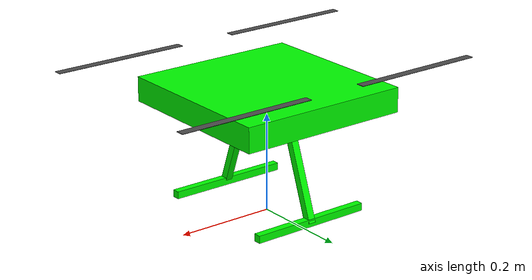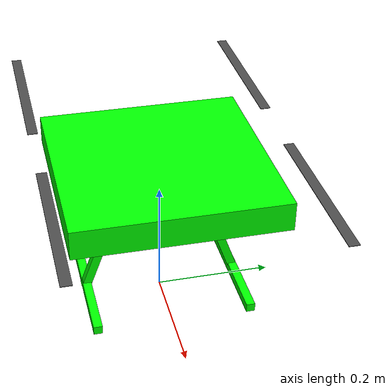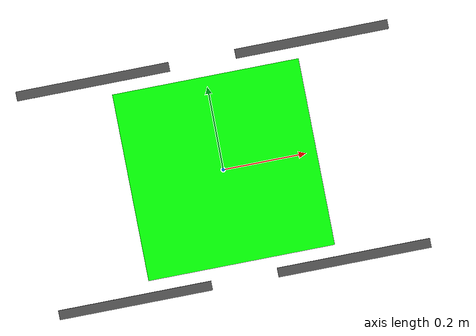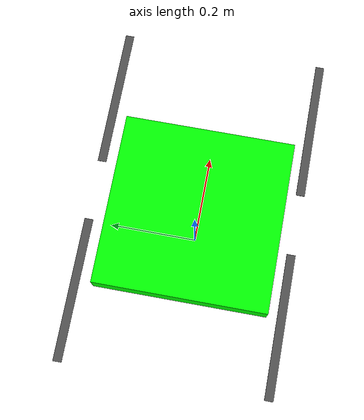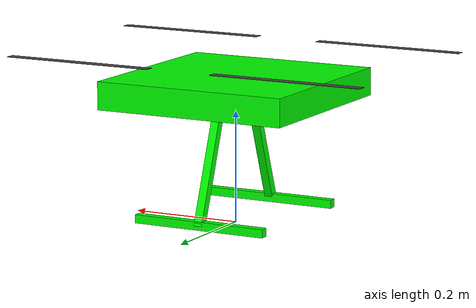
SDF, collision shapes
<?xml version="1.0" encoding="UTF-8"?>
<sdf version='1.9'>
  <model name='rl_frame'>
    <pose>0 0 .24 0 0 0</pose>
    <self_collide>false</self_collide>
    <static>false</static>
    <link name="base_link">
      <inertial>
        <mass>3.1</mass>
        <inertia>
          <ixx>0.039</ixx>
          <ixy>0</ixy>
          <ixz>0</ixz>
          <iyy>0.039</iyy>
          <iyz>0</iyz>
          <izz>0.061</izz>
        </inertia>
      </inertial>
      <gravity>true</gravity>
      <velocity_decay/>
      <visual name="base_link_visual">
        <pose>0 0 0 0 0 3.141592654</pose>
        <geometry>
        <sphere>
          <radius>0.08</radius>
        </sphere>
      </geometry>
      </visual>
      <visual name="base_link_arm_0">
        <pose>0.100 -0.100 0.0 -1.570796327 0 -2.356194490</pose>
        <geometry>
          <cylinder>
            <radius>0.02</radius>
            <length>0.2828</length>
          </cylinder>
        </geometry>
        <material>
          <diffuse>0 1 0 1</diffuse>
        </material>
      </visual>
      <visual name="base_link_arm_1">
        <pose>-0.100 0.100 0.0 1.570796327 0 -2.356194490</pose>
        <geometry>
          <cylinder>
            <radius>0.02</radius>
            <length>0.2828</length>
          </cylinder>
        </geometry>
        <material>
          <diffuse>1 0 0 1</diffuse>
        </material>
      </visual>
      <visual name="base_link_arm_2">
        <pose>0.100 0.100 0.0 1.570796327 0 -0.785398163</pose>
        <geometry>
          <cylinder>
            <radius>0.02</radius>
            <length>0.2828</length>
          </cylinder>
        </geometry>
        <material>
          <diffuse>0 1 0 1</diffuse>
        </material>
      </visual>
      <visual name="base_link_arm_3">
        <pose>-0.100 -0.100 0.0 -1.570796327 0 -0.785398163</pose>
        <geometry>
          <cylinder>
            <radius>0.02</radius>
            <length>0.2828</length>
          </cylinder>
        </geometry>
        <material>
          <diffuse>1 0 0 1</diffuse>
        </material>
      </visual>
      <collision name="base_link_collision_0">
        <pose>0 0 0 0 0 0</pose>
        <geometry>
          <box>
            <size>0.35355339059327373 0.35355339059327373 0.05</size>
          </box>
        </geometry>
        <surface>
          <contact>
            <ode>
              <min_depth>0.001</min_depth>
              <max_vel>0</max_vel>
            </ode>
          </contact>
          <friction>
            <ode/>
          </friction>
        </surface>
      </collision>
      <collision name="base_link_collision_1">
        <pose>0 -0.098 -.123 -0.35 0 0</pose>
        <geometry>
          <box>
            <size>0.015 0.015 0.21</size>
          </box>
        </geometry>
        <surface>
          <contact>
            <ode>
              <min_depth>0.001</min_depth>
              <max_vel>0</max_vel>
            </ode>
          </contact>
          <friction>
            <ode/>
          </friction>
        </surface>
      </collision>
      <collision name="base_link_collision_2">
        <pose>0 0.098 -.123 0.35 0 0</pose>
        <geometry>
          <box>
            <size>0.015 0.015 0.21</size>
          </box>
        </geometry>
        <surface>
          <contact>
            <ode>
              <min_depth>0.001</min_depth>
              <max_vel>0</max_vel>
            </ode>
          </contact>
          <friction>
            <ode/>
          </friction>
        </surface>
      </collision>
      <collision name="base_link_collision_3">
        <pose>0 -0.132 -.2195 0 0 0</pose>
        <geometry>
          <box>
            <size>0.25 0.015 0.015</size>
          </box>
        </geometry>
        <surface>
          <contact>
            <ode>
              <min_depth>0.001</min_depth>
              <max_vel>0</max_vel>
            </ode>
          </contact>
          <friction>
            <ode/>
          </friction>
        </surface>
      </collision>
      <collision name="base_link_collision_4">
        <pose>0 0.132 -.2195 0 0 0</pose>
        <geometry>
          <box>
            <size>0.25 0.015 0.015</size>
          </box>
        </geometry>
        <surface>
          <contact>
            <ode>
              <min_depth>0.001</min_depth>
              <max_vel>0</max_vel>
            </ode>
          </contact>
          <friction>
            <ode/>
          </friction>
        </surface>
      </collision>
      <sensor name="air_pressure_sensor" type="air_pressure">
        <always_on>1</always_on>
        <update_rate>50</update_rate>
        <air_pressure>
          <pressure>
            <noise type="gaussian">
              <mean>0</mean>
              <stddev>0.01</stddev>
            </noise>
          </pressure>
        </air_pressure>
      </sensor>
      <sensor name="imu_sensor" type="imu">
        <always_on>1</always_on>
        <update_rate>250</update_rate>
        <imu>
          <angular_velocity>
            <x>
              <noise type="gaussian">
                <mean>0</mean>
                <stddev>0.00018665</stddev>
                <dynamic_bias_stddev>3.8785e-05</dynamic_bias_stddev>
                <dynamic_bias_correlation_time>1000</dynamic_bias_correlation_time>
              </noise>
            </x>
            <y>
              <noise type="gaussian">
                <mean>0</mean>
                <stddev>0.00018665</stddev>
                <dynamic_bias_stddev>3.8785e-05</dynamic_bias_stddev>
                <dynamic_bias_correlation_time>1000</dynamic_bias_correlation_time>
              </noise>
            </y>
            <z>
              <noise type="gaussian">
                <mean>0</mean>
                <stddev>0.00018665</stddev>
                <dynamic_bias_stddev>3.8785e-05</dynamic_bias_stddev>
                <dynamic_bias_correlation_time>1000</dynamic_bias_correlation_time>
              </noise>
            </z>
          </angular_velocity>
          <linear_acceleration>
            <x>
              <noise type="gaussian">
                <mean>0</mean>
                <stddev>0.00186</stddev>
                <dynamic_bias_stddev>0.006</dynamic_bias_stddev>
                <dynamic_bias_correlation_time>300</dynamic_bias_correlation_time>
              </noise>
            </x>
            <y>
              <noise type="gaussian">
                <mean>0</mean>
                <stddev>0.00186</stddev>
                <dynamic_bias_stddev>0.006</dynamic_bias_stddev>
                <dynamic_bias_correlation_time>300</dynamic_bias_correlation_time>
              </noise>
            </y>
            <z>
              <noise type="gaussian">
                <mean>0</mean>
                <stddev>0.00186</stddev>
                <dynamic_bias_stddev>0.006</dynamic_bias_stddev>
                <dynamic_bias_correlation_time>300</dynamic_bias_correlation_time>
              </noise>
            </z>
          </linear_acceleration>
        </imu>
      </sensor>
      <sensor name="navsat_sensor" type="navsat">
        <always_on>1</always_on>
        <update_rate>30</update_rate>
      </sensor>
    </link>
    <link name="rotor_0">
      <gravity>true</gravity>
      <self_collide>false</self_collide>
      <velocity_decay/>
      <pose>0.20 -0.20 0.06 0 0 0</pose>
      <inertial>
          <mass>0.01</mass>
          <inertia>
            <ixx>0.000001</ixx>
            <iyy>0.000001</iyy>
            <izz>0.000001</izz>
          </inertia>
        </inertial>
      <visual name="rotor_0_visual">
        <pose>-0.022 -0.14638461538461536 -0.016 0 0 0</pose>
        <geometry>
          <mesh>
            <scale>0.8461538461538461 0.8461538461538461 0.8461538461538461</scale>
            <uri>model://x500_base/meshes/1345_prop_ccw.stl</uri>
          </mesh>
        </geometry>
        <material>
          <script>
            <name>Gazebo/DarkGrey</name>
            <uri>file://media/materials/scripts/gazebo.material</uri>
          </script>
        </material>
      </visual>
      <visual name="rotor_0_visual_motor_bell">
        <pose>0 0 -.032 0 0 0</pose>
        <geometry>
          <mesh>
            <scale>1 1 1</scale>
            <uri>model://x500_base/meshes/5010Bell.dae</uri>
          </mesh>
        </geometry>
      </visual>
      <collision name="rotor_0_collision">
        <pose>0 0 0 0 0 0 </pose>
        <geometry>
          <box>
            <size>0.2792307692307692 0.016923076923076923 0.0008461538461538462</size>
          </box>
        </geometry>
        <surface>
          <contact>
            <ode>
              <min_depth>0.001</min_depth>
              <max_vel>0</max_vel>
            </ode>
          </contact>
          <friction>
            <ode/>
          </friction>
        </surface>
      </collision>
    </link>
    <joint name="rotor_0_joint" type="revolute">
      <parent>base_link</parent>
      <child>rotor_0</child>
      <axis>
        <xyz>0 0 1</xyz>
        <limit>
          <lower>-1e+16</lower>
          <upper>1e+16</upper>
        </limit>
        <dynamics>
          <spring_reference>0</spring_reference>
          <spring_stiffness>0</spring_stiffness>
        </dynamics>
      </axis>
    </joint>
    <link name="rotor_1">
      <gravity>true</gravity>
      <self_collide>false</self_collide>
      <velocity_decay/>
      <pose>-0.20 0.20 0.06 0 0 0</pose>
      <inertial>
          <mass>0.01</mass>
          <inertia>
            <ixx>0.000001</ixx>
            <iyy>0.000001</iyy>
            <izz>0.000001</izz>
          </inertia>
        </inertial>
      <visual name="rotor_1_visual">
        <pose>-0.022 -0.14638461538461536 -0.016 0 0 0</pose>
        <geometry>
          <mesh>
            <scale>0.8461538461538461 0.8461538461538461 0.8461538461538461</scale>
            <uri>model://x500_base/meshes/1345_prop_ccw.stl</uri>
          </mesh>
        </geometry>
        <material>
          <script>
            <name>Gazebo/DarkGrey</name>
            <uri>file://media/materials/scripts/gazebo.material</uri>
          </script>
        </material>
      </visual>
      <visual name="rotor_1_visual_motor_top">
        <pose>0 0 -.032 0 0 0</pose>
        <geometry>
          <mesh>
            <scale>1 1 1</scale>
            <uri>model://x500_base/meshes/5010Bell.dae</uri>
          </mesh>
        </geometry>
      </visual>
      <collision name="rotor_1_collision">
        <pose>0 0 0 0 0 0 </pose>
        <geometry>
          <box>
            <size>0.2792307692307692 0.016923076923076923 0.0008461538461538462</size>
          </box>
        </geometry>
        <surface>
          <contact>
            <ode>
              <min_depth>0.001</min_depth>
              <max_vel>0</max_vel>
            </ode>
          </contact>
          <friction>
            <ode/>
          </friction>
        </surface>
      </collision>
    </link>
    <joint name="rotor_1_joint" type="revolute">
      <parent>base_link</parent>
      <child>rotor_1</child>
      <axis>
        <xyz>0 0 1</xyz>
        <limit>
          <lower>-1e+16</lower>
          <upper>1e+16</upper>
        </limit>
        <dynamics>
          <spring_reference>0</spring_reference>
          <spring_stiffness>0</spring_stiffness>
        </dynamics>
      </axis>
    </joint>
    <link name="rotor_2">
      <gravity>true</gravity>
      <self_collide>false</self_collide>
      <velocity_decay/>
      <pose>0.20 0.20 0.06 0 0 0</pose>
      <inertial>
          <mass>0.01</mass>
          <inertia>
            <ixx>0.000001</ixx>
            <iyy>0.000001</iyy>
            <izz>0.000001</izz>
          </inertia>
        </inertial>
      <visual name="rotor_2_visual">
        <pose>-0.022 -0.14638461538461536 -0.016 0 0 0</pose>
        <geometry>
          <mesh>
            <scale>0.8461538461538461 0.8461538461538461 0.8461538461538461</scale>
            <uri>model://x500_base/meshes/1345_prop_cw.stl</uri>
          </mesh>
        </geometry>
        <material>
          <script>
            <name>Gazebo/DarkGrey</name>
            <uri>file://media/materials/scripts/gazebo.material</uri>
          </script>
        </material>
      </visual>
      <visual name="rotor_2_visual_motor_top">
        <pose>0 0 -.032 0 0 0</pose>
        <geometry>
          <mesh>
            <scale>1 1 1</scale>
            <uri>model://x500_base/meshes/5010Bell.dae</uri>
          </mesh>
        </geometry>
      </visual>
      <collision name="rotor_2_collision">
        <pose>0 0 0 0 0 0 </pose>
        <geometry>
          <box>
            <size>0.2792307692307692 0.016923076923076923 0.0008461538461538462</size>
          </box>
        </geometry>
        <surface>
          <contact>
            <ode>
              <min_depth>0.001</min_depth>
              <max_vel>0</max_vel>
            </ode>
          </contact>
          <friction>
            <ode/>
          </friction>
        </surface>
      </collision>
    </link>
    <joint name="rotor_2_joint" type="revolute">
      <parent>base_link</parent>
      <child>rotor_2</child>
      <axis>
        <xyz>0 0 1</xyz>
        <limit>
          <lower>-1e+16</lower>
          <upper>1e+16</upper>
        </limit>
        <dynamics>
          <spring_reference>0</spring_reference>
          <spring_stiffness>0</spring_stiffness>
        </dynamics>
      </axis>
    </joint>
    <link name="rotor_3">
      <gravity>true</gravity>
      <self_collide>false</self_collide>
      <velocity_decay/>
      <pose>-0.20 -0.20 0.06 0 0 0</pose>
      <inertial>
          <mass>0.01</mass>
          <inertia>
            <ixx>0.000001</ixx>
            <iyy>0.000001</iyy>
            <izz>0.000001</izz>
          </inertia>
        </inertial>
      <visual name="rotor_3_visual">
        <pose>-0.022 -0.14638461538461536 -0.016 0 0 0</pose>
        <geometry>
          <mesh>
            <scale>0.8461538461538461 0.8461538461538461 0.8461538461538461</scale>
            <uri>model://x500_base/meshes/1345_prop_cw.stl</uri>
          </mesh>
        </geometry>
        <material>
          <script>
            <name>Gazebo/DarkGrey</name>
            <uri>file://media/materials/scripts/gazebo.material</uri>
          </script>
        </material>
      </visual>
      <visual name="rotor_3_visual_motor_top">
        <pose>0 0 -.032 0 0 0</pose>
        <geometry>
          <mesh>
            <scale>1 1 1</scale>
            <uri>model://x500_base/meshes/5010Bell.dae</uri>
          </mesh>
        </geometry>
      </visual>
      <collision name="rotor_3_collision">
        <pose>0 0 0 0 0 0 </pose>
        <geometry>
          <box>
            <size>0.2792307692307692 0.016923076923076923 0.0008461538461538462</size>
          </box>
        </geometry>
        <surface>
          <contact>
            <ode>
              <min_depth>0.001</min_depth>
              <max_vel>0</max_vel>
            </ode>
          </contact>
          <friction>
            <ode/>
          </friction>
        </surface>
      </collision>
    </link>
    <joint name="rotor_3_joint" type="revolute">
      <parent>base_link</parent>
      <child>rotor_3</child>
      <axis>
        <xyz>0 0 1</xyz>
        <limit>
          <lower>-1e+16</lower>
          <upper>1e+16</upper>
        </limit>
        <dynamics>
          <spring_reference>0</spring_reference>
          <spring_stiffness>0</spring_stiffness>
        </dynamics>
      </axis>
    </joint>

    <plugin filename="gz-sim-multicopter-motor-model-system" name="gz::sim::systems::MulticopterMotorModel">
      <jointName>rotor_0_joint</jointName>
      <linkName>rotor_0</linkName>
      <turningDirection>ccw</turningDirection>
      <timeConstantUp>0.05</timeConstantUp>
      <timeConstantDown>0.05</timeConstantDown>
      <maxRotVelocity>800.0</maxRotVelocity>
      <motorConstant>0.000025</motorConstant>
      <momentConstant>0.00125</momentConstant>
      <commandSubTopic>command/motor_speed</commandSubTopic>
      <motorNumber>0</motorNumber>
      <rotorDragCoefficient>8.06428e-05</rotorDragCoefficient>
      <rollingMomentCoefficient>1e-06</rollingMomentCoefficient>
      <rotorVelocitySlowdownSim>10</rotorVelocitySlowdownSim>
      <motorType>velocity</motorType>
    </plugin>
    <plugin filename="gz-sim-multicopter-motor-model-system" name="gz::sim::systems::MulticopterMotorModel">
      <jointName>rotor_1_joint</jointName>
      <linkName>rotor_1</linkName>
      <turningDirection>ccw</turningDirection>
      <timeConstantUp>0.05</timeConstantUp>
      <timeConstantDown>0.05</timeConstantDown>
      <maxRotVelocity>800.0</maxRotVelocity>
      <motorConstant>0.000025</motorConstant>
      <momentConstant>0.00125</momentConstant>
      <commandSubTopic>command/motor_speed</commandSubTopic>
      <motorNumber>1</motorNumber>
      <rotorDragCoefficient>8.06428e-05</rotorDragCoefficient>
      <rollingMomentCoefficient>1e-06</rollingMomentCoefficient>
      <rotorVelocitySlowdownSim>10</rotorVelocitySlowdownSim>
      <motorType>velocity</motorType>
    </plugin>
    <plugin filename="gz-sim-multicopter-motor-model-system" name="gz::sim::systems::MulticopterMotorModel">
      <jointName>rotor_2_joint</jointName>
      <linkName>rotor_2</linkName>
      <turningDirection>cw</turningDirection>
      <timeConstantUp>0.05</timeConstantUp>
      <timeConstantDown>0.05</timeConstantDown>
      <maxRotVelocity>800.0</maxRotVelocity>
      <motorConstant>0.000025</motorConstant>
      <momentConstant>0.00125</momentConstant>
      <commandSubTopic>command/motor_speed</commandSubTopic>
      <motorNumber>2</motorNumber>
      <rotorDragCoefficient>8.06428e-05</rotorDragCoefficient>
      <rollingMomentCoefficient>1e-06</rollingMomentCoefficient>
      <rotorVelocitySlowdownSim>10</rotorVelocitySlowdownSim>
      <motorType>velocity</motorType>
    </plugin>
    <plugin filename="gz-sim-multicopter-motor-model-system" name="gz::sim::systems::MulticopterMotorModel">
      <jointName>rotor_3_joint</jointName>
      <linkName>rotor_3</linkName>
      <turningDirection>cw</turningDirection>
      <timeConstantUp>0.05</timeConstantUp>
      <timeConstantDown>0.05</timeConstantDown>
      <maxRotVelocity>800.0</maxRotVelocity>
      <motorConstant>0.000025</motorConstant>
      <momentConstant>0.00125</momentConstant>
      <commandSubTopic>command/motor_speed</commandSubTopic>
      <motorNumber>3</motorNumber>
      <rotorDragCoefficient>8.06428e-05</rotorDragCoefficient>
      <rollingMomentCoefficient>1e-06</rollingMomentCoefficient>
      <rotorVelocitySlowdownSim>10</rotorVelocitySlowdownSim>
      <motorType>velocity</motorType>
    </plugin>
  </model>
</sdf>
